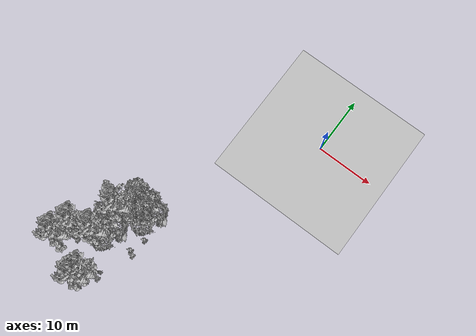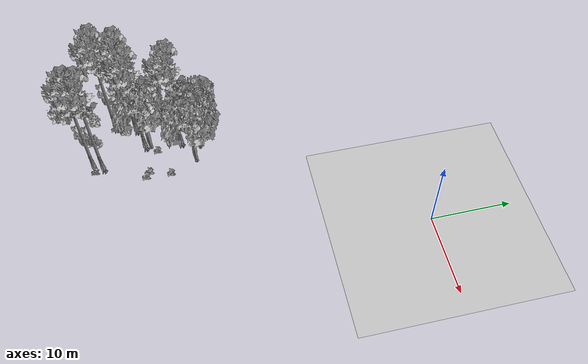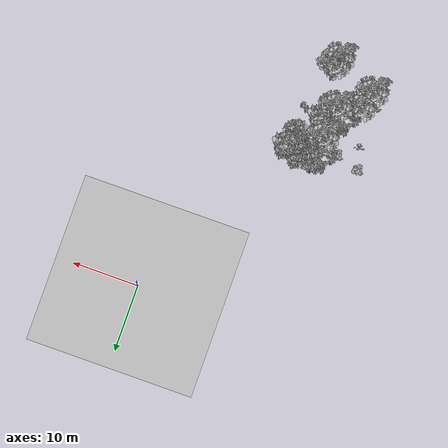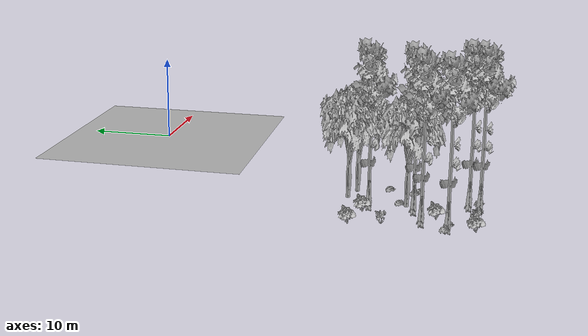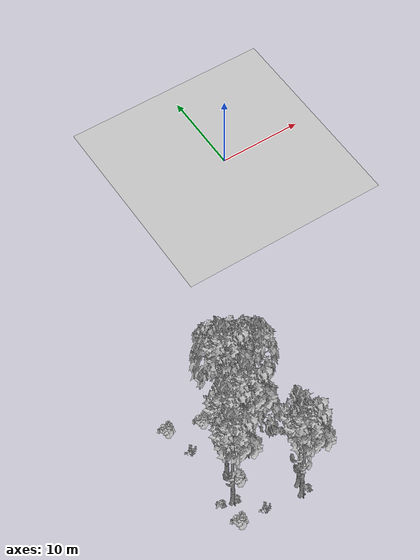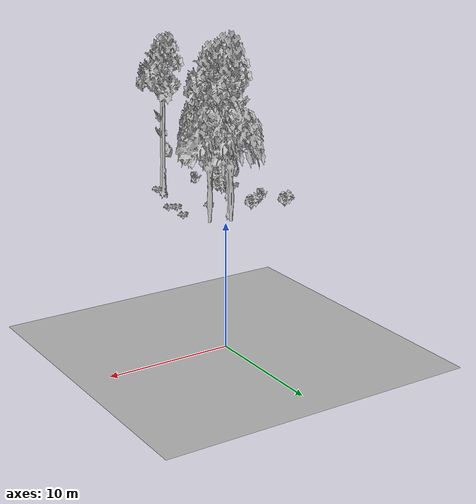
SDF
<sdf version="1.7">
 <world name="default">
  <model name="ground_plane">
   <static>1</static>
   <link name="link">
    <collision name="collision">
     <pose>-50 0 0 0 -0 0</pose>
     <geometry><plane><normal>0 0 1</normal><size>80 80</size></plane></geometry>
     <surface><contact><ode><min_depth>0.01</min_depth><max_vel>0</max_vel></ode></contact></surface>
    </collision>
    <visual name="grass">
     <cast_shadows>0</cast_shadows>
     <geometry>
      <mesh>
       <scale>0.46714285714285714 0.46714285714285714 0.1</scale>
       <uri>file://grass_plane/meshes/grass_plane.dae</uri>
      </mesh>
     </geometry>
    </visual>
   </link>
  </model>
  <model name="Tree 83">
   <static>1</static>
   <pose>-22.811014897205105 -36.086183615635335 0 1.57079 -0 0</pose>
   <link name="link">
    <collision name="collision">
     <geometry><mesh><scale>3.5 5 3.5</scale><uri>model://tree_9/meshes/tree_9.obj</uri></mesh></geometry>
    </collision>
    <visual name="visual">
     <geometry><mesh><scale>3.5 5 3.5</scale><uri>model://tree_9/meshes/tree_9.obj</uri></mesh></geometry>
    </visual>
   </link>
  </model>
  <model name="Tree 105">
   <static>1</static>
   <pose>-17.099146623566938 -25.60547774713055 0 1.57079 -0 0</pose>
   <link name="link">
    <collision name="collision">
     <geometry><mesh><scale>3.5 5 3.5</scale><uri>model://tree_2/meshes/tree_2.obj</uri></mesh></geometry>
    </collision>
    <visual name="visual">
     <geometry><mesh><scale>3.5 5 3.5</scale><uri>model://tree_2/meshes/tree_2.obj</uri></mesh></geometry>
    </visual>
   </link>
  </model>
  <model name="Tree 165">
   <static>1</static>
   <pose>-18.45666192146894 -31.80035077699995 0 1.57079 -0 0</pose>
   <link name="link">
    <collision name="collision">
     <geometry><mesh><scale>3.5 5 3.5</scale><uri>model://tree_2/meshes/tree_2.obj</uri></mesh></geometry>
    </collision>
    <visual name="visual">
     <geometry><mesh><scale>3.5 5 3.5</scale><uri>model://tree_2/meshes/tree_2.obj</uri></mesh></geometry>
    </visual>
   </link>
  </model>
  <model name="Tree 230">
   <static>1</static>
   <pose>-15.03105175496232 -26.352721973832523 0 1.57079 -0 0</pose>
   <link name="link">
    <collision name="collision">
     <geometry><mesh><scale>3.5 5 3.5</scale><uri>model://tree_2/meshes/tree_2.obj</uri></mesh></geometry>
    </collision>
    <visual name="visual">
     <geometry><mesh><scale>3.5 5 3.5</scale><uri>model://tree_2/meshes/tree_2.obj</uri></mesh></geometry>
    </visual>
   </link>
  </model>
  <model name="Tree 399">
   <static>1</static>
   <pose>-18.744127534189957 -32.52926240955493 0 1.57079 -0 0</pose>
   <link name="link">
    <collision name="collision">
     <geometry><mesh><scale>3.5 5 3.5</scale><uri>model://tree_9/meshes/tree_9.obj</uri></mesh></geometry>
    </collision>
    <visual name="visual">
     <geometry><mesh><scale>3.5 5 3.5</scale><uri>model://tree_9/meshes/tree_9.obj</uri></mesh></geometry>
    </visual>
   </link>
  </model>
  <model name="Tree 509">
   <static>1</static>
   <pose>-16.35535002229887 -38.03110555218709 0 1.57079 -0 0</pose>
   <link name="link">
    <collision name="collision">
     <geometry><mesh><scale>3.5 5 3.5</scale><uri>model://tree_9/meshes/tree_9.obj</uri></mesh></geometry>
    </collision>
    <visual name="visual">
     <geometry><mesh><scale>3.5 5 3.5</scale><uri>model://tree_9/meshes/tree_9.obj</uri></mesh></geometry>
    </visual>
   </link>
  </model>
  <model name="Tree 532">
   <static>1</static>
   <pose>-18.326621388285602 -27.911733442997885 0 1.57079 -0 0</pose>
   <link name="link">
    <collision name="collision">
     <geometry><mesh><scale>3.5 5 3.5</scale><uri>model://tree_9/meshes/tree_9.obj</uri></mesh></geometry>
    </collision>
    <visual name="visual">
     <geometry><mesh><scale>3.5 5 3.5</scale><uri>model://tree_9/meshes/tree_9.obj</uri></mesh></geometry>
    </visual>
   </link>
  </model>
  <model name="Tree 533">
   <static>1</static>
   <pose>-16.727710253912743 -39.130921607789375 0 1.57079 -0 0</pose>
   <link name="link">
    <collision name="collision">
     <geometry><mesh><scale>3.5 5 3.5</scale><uri>model://tree_9/meshes/tree_9.obj</uri></mesh></geometry>
    </collision>
    <visual name="visual">
     <geometry><mesh><scale>3.5 5 3.5</scale><uri>model://tree_9/meshes/tree_9.obj</uri></mesh></geometry>
    </visual>
   </link>
  </model>
  <model name="Tree 626">
   <static>1</static>
   <pose>-21.778673587873175 -33.46995329975634 0 1.57079 -0 0</pose>
   <link name="link">
    <collision name="collision">
     <geometry><mesh><scale>3.5 5 3.5</scale><uri>model://tree_9/meshes/tree_9.obj</uri></mesh></geometry>
    </collision>
    <visual name="visual">
     <geometry><mesh><scale>3.5 5 3.5</scale><uri>model://tree_9/meshes/tree_9.obj</uri></mesh></geometry>
    </visual>
   </link>
  </model>
  <model name="Bush 64">
   <static>1</static>
   <pose>-21.30563702117016 -34.956894789586514 0 1.57079 -0 0</pose>
   <link name="link">
    <collision name="collision">
     <geometry><mesh><scale>2 2 2</scale><uri>model://bush_1/meshes/bush_1.obj</uri></mesh></geometry>
     <surface><contact><collide_without_contact>false</collide_without_contact></contact></surface>
    </collision>
    <visual name="visual">
     <geometry><mesh><scale>2 2 2</scale><uri>model://bush_1/meshes/bush_1.obj</uri></mesh></geometry>
    </visual>
   </link>
  </model>
  <model name="Bush 123">
   <static>1</static>
   <pose>-13.841457047315771 -29.756130170369943 0 1.57079 -0 0</pose>
   <link name="link">
    <collision name="collision">
     <geometry><mesh><scale>2 2 2</scale><uri>model://bush_2/meshes/bush_2.obj</uri></mesh></geometry>
     <surface><contact><collide_without_contact>false</collide_without_contact></contact></surface>
    </collision>
    <visual name="visual">
     <geometry><mesh><scale>2 2 2</scale><uri>model://bush_2/meshes/bush_2.obj</uri></mesh></geometry>
    </visual>
   </link>
  </model>
  <model name="Bush 156">
   <static>1</static>
   <pose>-24.061322046188543 -35.8543460664243 0 1.57079 -0 0</pose>
   <link name="link">
    <collision name="collision">
     <geometry><mesh><scale>2 2 2</scale><uri>model://bush_2/meshes/bush_2.obj</uri></mesh></geometry>
     <surface><contact><collide_without_contact>false</collide_without_contact></contact></surface>
    </collision>
    <visual name="visual">
     <geometry><mesh><scale>2 2 2</scale><uri>model://bush_2/meshes/bush_2.obj</uri></mesh></geometry>
    </visual>
   </link>
  </model>
  <model name="Bush 335">
   <static>1</static>
   <pose>-20.821404858731793 -38.92438906952505 0 1.57079 -0 0</pose>
   <link name="link">
    <collision name="collision">
     <geometry><mesh><scale>2 2 2</scale><uri>model://bush_4/meshes/bush_4.obj</uri></mesh></geometry>
     <surface><contact><collide_without_contact>false</collide_without_contact></contact></surface>
    </collision>
    <visual name="visual">
     <geometry><mesh><scale>2 2 2</scale><uri>model://bush_4/meshes/bush_4.obj</uri></mesh></geometry>
    </visual>
   </link>
  </model>
  <model name="Bush 338">
   <static>1</static>
   <pose>-23.49823582220925 -29.694166593552083 0 1.57079 -0 0</pose>
   <link name="link">
    <collision name="collision">
     <geometry><mesh><scale>2 2 2</scale><uri>model://bush_4/meshes/bush_4.obj</uri></mesh></geometry>
     <surface><contact><collide_without_contact>false</collide_without_contact></contact></surface>
    </collision>
    <visual name="visual">
     <geometry><mesh><scale>2 2 2</scale><uri>model://bush_4/meshes/bush_4.obj</uri></mesh></geometry>
    </visual>
   </link>
  </model>
  <model name="Bush 361">
   <static>1</static>
   <pose>-24.325931118528366 -26.5302681760663 0 1.57079 -0 0</pose>
   <link name="link">
    <collision name="collision">
     <geometry><mesh><scale>2 2 2</scale><uri>model://bush_1/meshes/bush_1.obj</uri></mesh></geometry>
     <surface><contact><collide_without_contact>false</collide_without_contact></contact></surface>
    </collision>
    <visual name="visual">
     <geometry><mesh><scale>2 2 2</scale><uri>model://bush_1/meshes/bush_1.obj</uri></mesh></geometry>
    </visual>
   </link>
  </model>
  <model name="Bush 422">
   <static>1</static>
   <pose>-22.587543042241773 -36.20109137480603 0 1.57079 -0 0</pose>
   <link name="link">
    <collision name="collision">
     <geometry><mesh><scale>2 2 2</scale><uri>model://bush_2/meshes/bush_2.obj</uri></mesh></geometry>
     <surface><contact><collide_without_contact>false</collide_without_contact></contact></surface>
    </collision>
    <visual name="visual">
     <geometry><mesh><scale>2 2 2</scale><uri>model://bush_2/meshes/bush_2.obj</uri></mesh></geometry>
    </visual>
   </link>
  </model>
  <model name="Bush 437">
   <static>1</static>
   <pose>-23.702316105019037 -38.80132144464481 0 1.57079 -0 0</pose>
   <link name="link">
    <collision name="collision">
     <geometry><mesh><scale>2 2 2</scale><uri>model://bush_1/meshes/bush_1.obj</uri></mesh></geometry>
     <surface><contact><collide_without_contact>false</collide_without_contact></contact></surface>
    </collision>
    <visual name="visual">
     <geometry><mesh><scale>2 2 2</scale><uri>model://bush_1/meshes/bush_1.obj</uri></mesh></geometry>
    </visual>
   </link>
  </model>
  <model name="Bush 440">
   <static>1</static>
   <pose>-20.81762802648144 -27.577672938682866 0 1.57079 -0 0</pose>
   <link name="link">
    <collision name="collision">
     <geometry><mesh><scale>2 2 2</scale><uri>model://bush_1/meshes/bush_1.obj</uri></mesh></geometry>
     <surface><contact><collide_without_contact>false</collide_without_contact></contact></surface>
    </collision>
    <visual name="visual">
     <geometry><mesh><scale>2 2 2</scale><uri>model://bush_1/meshes/bush_1.obj</uri></mesh></geometry>
    </visual>
   </link>
  </model>
  <model name="Bush 451">
   <static>1</static>
   <pose>-13.910872529400365 -32.86438907778022 0 1.57079 -0 0</pose>
   <link name="link">
    <collision name="collision">
     <geometry><mesh><scale>2 2 2</scale><uri>model://bush_2/meshes/bush_2.obj</uri></mesh></geometry>
     <surface><contact><collide_without_contact>false</collide_without_contact></contact></surface>
    </collision>
    <visual name="visual">
     <geometry><mesh><scale>2 2 2</scale><uri>model://bush_2/meshes/bush_2.obj</uri></mesh></geometry>
    </visual>
   </link>
  </model>
  <model name="Bush 501">
   <static>1</static>
   <pose>-16.061432214056147 -39.07481855808349 0 1.57079 -0 0</pose>
   <link name="link">
    <collision name="collision">
     <geometry><mesh><scale>2 2 2</scale><uri>model://bush_2/meshes/bush_2.obj</uri></mesh></geometry>
     <surface><contact><collide_without_contact>false</collide_without_contact></contact></surface>
    </collision>
    <visual name="visual">
     <geometry><mesh><scale>2 2 2</scale><uri>model://bush_2/meshes/bush_2.obj</uri></mesh></geometry>
    </visual>
   </link>
  </model>
  <model name="Bush 562">
   <static>1</static>
   <pose>-17.79344880069391 -31.08178698013053 0 1.57079 -0 0</pose>
   <link name="link">
    <collision name="collision">
     <geometry><mesh><scale>2 2 2</scale><uri>model://bush_2/meshes/bush_2.obj</uri></mesh></geometry>
     <surface><contact><collide_without_contact>false</collide_without_contact></contact></surface>
    </collision>
    <visual name="visual">
     <geometry><mesh><scale>2 2 2</scale><uri>model://bush_2/meshes/bush_2.obj</uri></mesh></geometry>
    </visual>
   </link>
  </model>
  <model name="Bush 587">
   <static>1</static>
   <pose>-14.636934715186058 -32.38517020894997 0 1.57079 -0 0</pose>
   <link name="link">
    <collision name="collision">
     <geometry><mesh><scale>2 2 2</scale><uri>model://bush_2/meshes/bush_2.obj</uri></mesh></geometry>
     <surface><contact><collide_without_contact>false</collide_without_contact></contact></surface>
    </collision>
    <visual name="visual">
     <geometry><mesh><scale>2 2 2</scale><uri>model://bush_2/meshes/bush_2.obj</uri></mesh></geometry>
    </visual>
   </link>
  </model>
 </world>
</sdf>
